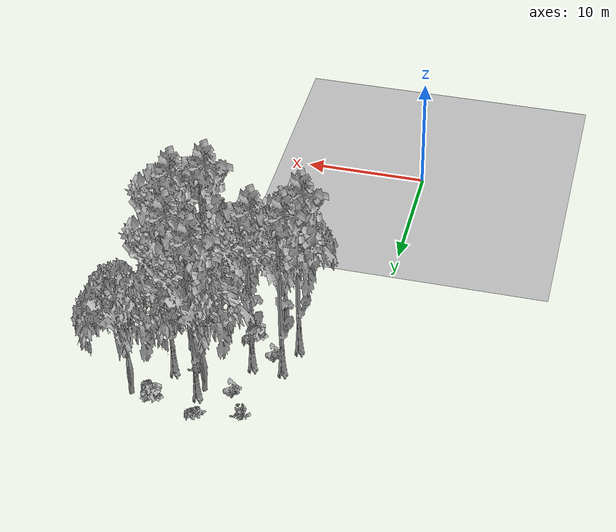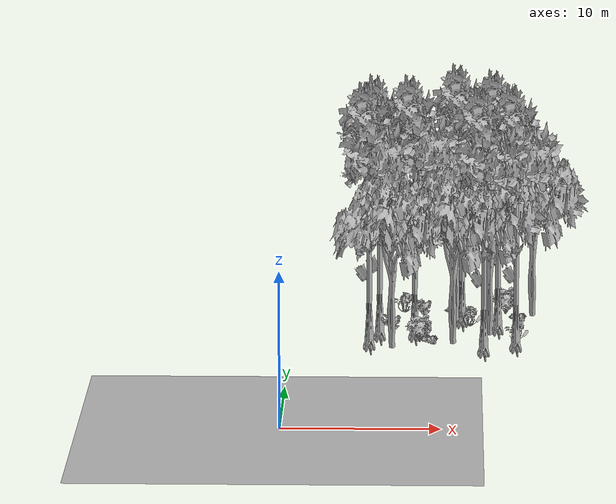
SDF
<sdf version="1.7">
 <world name="default">
  <model name="ground_plane">
   <static>1</static>
   <link name="link">
    <collision name="collision">
     <pose>-50 0 0 0 -0 0</pose>
     <geometry><plane><normal>0 0 1</normal><size>80 80</size></plane></geometry>
     <surface><contact><ode><min_depth>0.01</min_depth><max_vel>0</max_vel></ode></contact></surface>
    </collision>
    <visual name="grass">
     <cast_shadows>0</cast_shadows>
     <geometry>
      <mesh>
       <scale>0.46714285714285714 0.46714285714285714 0.1</scale>
       <uri>file://grass_plane/meshes/grass_plane.dae</uri>
      </mesh>
     </geometry>
    </visual>
   </link>
  </model>
  <model name="Tree 31">
   <static>1</static>
   <pose>16.09701156333501 29.292835042399773 0 1.57079 -0 0</pose>
   <link name="link">
    <collision name="collision">
     <geometry><mesh><scale>3.5 5 3.5</scale><uri>model://tree_2/meshes/tree_2.obj</uri></mesh></geometry>
    </collision>
    <visual name="visual">
     <geometry><mesh><scale>3.5 5 3.5</scale><uri>model://tree_2/meshes/tree_2.obj</uri></mesh></geometry>
    </visual>
   </link>
  </model>
  <model name="Tree 89">
   <static>1</static>
   <pose>12.811170432108987 20.4282303136765 0 1.57079 -0 0</pose>
   <link name="link">
    <collision name="collision">
     <geometry><mesh><scale>3.5 5 3.5</scale><uri>model://tree_9/meshes/tree_9.obj</uri></mesh></geometry>
    </collision>
    <visual name="visual">
     <geometry><mesh><scale>3.5 5 3.5</scale><uri>model://tree_9/meshes/tree_9.obj</uri></mesh></geometry>
    </visual>
   </link>
  </model>
  <model name="Tree 192">
   <static>1</static>
   <pose>14.956427715684825 21.725451570903275 0 1.57079 -0 0</pose>
   <link name="link">
    <collision name="collision">
     <geometry><mesh><scale>3.5 5 3.5</scale><uri>model://tree_9/meshes/tree_9.obj</uri></mesh></geometry>
    </collision>
    <visual name="visual">
     <geometry><mesh><scale>3.5 5 3.5</scale><uri>model://tree_9/meshes/tree_9.obj</uri></mesh></geometry>
    </visual>
   </link>
  </model>
  <model name="Tree 211">
   <static>1</static>
   <pose>11.382955004611148 28.433134392730025 0 1.57079 -0 0</pose>
   <link name="link">
    <collision name="collision">
     <geometry><mesh><scale>3.5 5 3.5</scale><uri>model://tree_9/meshes/tree_9.obj</uri></mesh></geometry>
    </collision>
    <visual name="visual">
     <geometry><mesh><scale>3.5 5 3.5</scale><uri>model://tree_9/meshes/tree_9.obj</uri></mesh></geometry>
    </visual>
   </link>
  </model>
  <model name="Tree 225">
   <static>1</static>
   <pose>8.210622335412822 24.585840497905068 0 1.57079 -0 0</pose>
   <link name="link">
    <collision name="collision">
     <geometry><mesh><scale>3.5 5 3.5</scale><uri>model://tree_9/meshes/tree_9.obj</uri></mesh></geometry>
    </collision>
    <visual name="visual">
     <geometry><mesh><scale>3.5 5 3.5</scale><uri>model://tree_9/meshes/tree_9.obj</uri></mesh></geometry>
    </visual>
   </link>
  </model>
  <model name="Tree 306">
   <static>1</static>
   <pose>13.800213129007048 26.397666558252126 0 1.57079 -0 0</pose>
   <link name="link">
    <collision name="collision">
     <geometry><mesh><scale>3.5 5 3.5</scale><uri>model://tree_9/meshes/tree_9.obj</uri></mesh></geometry>
    </collision>
    <visual name="visual">
     <geometry><mesh><scale>3.5 5 3.5</scale><uri>model://tree_9/meshes/tree_9.obj</uri></mesh></geometry>
    </visual>
   </link>
  </model>
  <model name="Tree 401">
   <static>1</static>
   <pose>13.13253680704652 23.965486844738336 0 1.57079 -0 0</pose>
   <link name="link">
    <collision name="collision">
     <geometry><mesh><scale>3.5 5 3.5</scale><uri>model://tree_2/meshes/tree_2.obj</uri></mesh></geometry>
    </collision>
    <visual name="visual">
     <geometry><mesh><scale>3.5 5 3.5</scale><uri>model://tree_2/meshes/tree_2.obj</uri></mesh></geometry>
    </visual>
   </link>
  </model>
  <model name="Tree 420">
   <static>1</static>
   <pose>5.205020564739172 22.053635298223213 0 1.57079 -0 0</pose>
   <link name="link">
    <collision name="collision">
     <geometry><mesh><scale>3.5 5 3.5</scale><uri>model://tree_9/meshes/tree_9.obj</uri></mesh></geometry>
    </collision>
    <visual name="visual">
     <geometry><mesh><scale>3.5 5 3.5</scale><uri>model://tree_9/meshes/tree_9.obj</uri></mesh></geometry>
    </visual>
   </link>
  </model>
  <model name="Tree 422">
   <static>1</static>
   <pose>10.894431190442148 27.805379338085615 0 1.57079 -0 0</pose>
   <link name="link">
    <collision name="collision">
     <geometry><mesh><scale>3.5 5 3.5</scale><uri>model://tree_2/meshes/tree_2.obj</uri></mesh></geometry>
    </collision>
    <visual name="visual">
     <geometry><mesh><scale>3.5 5 3.5</scale><uri>model://tree_2/meshes/tree_2.obj</uri></mesh></geometry>
    </visual>
   </link>
  </model>
  <model name="Tree 437">
   <static>1</static>
   <pose>6.64400740543217 20.320124091867214 0 1.57079 -0 0</pose>
   <link name="link">
    <collision name="collision">
     <geometry><mesh><scale>3.5 5 3.5</scale><uri>model://tree_2/meshes/tree_2.obj</uri></mesh></geometry>
    </collision>
    <visual name="visual">
     <geometry><mesh><scale>3.5 5 3.5</scale><uri>model://tree_2/meshes/tree_2.obj</uri></mesh></geometry>
    </visual>
   </link>
  </model>
  <model name="Tree 544">
   <static>1</static>
   <pose>5.866817948618738 24.57252617905789 0 1.57079 -0 0</pose>
   <link name="link">
    <collision name="collision">
     <geometry><mesh><scale>3.5 5 3.5</scale><uri>model://tree_9/meshes/tree_9.obj</uri></mesh></geometry>
    </collision>
    <visual name="visual">
     <geometry><mesh><scale>3.5 5 3.5</scale><uri>model://tree_9/meshes/tree_9.obj</uri></mesh></geometry>
    </visual>
   </link>
  </model>
  <model name="Tree 604">
   <static>1</static>
   <pose>10.682920250986001 21.540551169884466 0 1.57079 -0 0</pose>
   <link name="link">
    <collision name="collision">
     <geometry><mesh><scale>3.5 5 3.5</scale><uri>model://tree_2/meshes/tree_2.obj</uri></mesh></geometry>
    </collision>
    <visual name="visual">
     <geometry><mesh><scale>3.5 5 3.5</scale><uri>model://tree_2/meshes/tree_2.obj</uri></mesh></geometry>
    </visual>
   </link>
  </model>
  <model name="Bush 47">
   <static>1</static>
   <pose>9.216439573711668 22.0887438945675 0 1.57079 -0 0</pose>
   <link name="link">
    <collision name="collision">
     <geometry><mesh><scale>2 2 2</scale><uri>model://bush_2/meshes/bush_2.obj</uri></mesh></geometry>
     <surface><contact><collide_without_contact>false</collide_without_contact></contact></surface>
    </collision>
    <visual name="visual">
     <geometry><mesh><scale>2 2 2</scale><uri>model://bush_2/meshes/bush_2.obj</uri></mesh></geometry>
    </visual>
   </link>
  </model>
  <model name="Bush 118">
   <static>1</static>
   <pose>7.520211535157735 30.07102394331224 0 1.57079 -0 0</pose>
   <link name="link">
    <collision name="collision">
     <geometry><mesh><scale>2 2 2</scale><uri>model://bush_4/meshes/bush_4.obj</uri></mesh></geometry>
     <surface><contact><collide_without_contact>false</collide_without_contact></contact></surface>
    </collision>
    <visual name="visual">
     <geometry><mesh><scale>2 2 2</scale><uri>model://bush_4/meshes/bush_4.obj</uri></mesh></geometry>
    </visual>
   </link>
  </model>
  <model name="Bush 220">
   <static>1</static>
   <pose>8.56169828697471 21.869074713526913 0 1.57079 -0 0</pose>
   <link name="link">
    <collision name="collision">
     <geometry><mesh><scale>2 2 2</scale><uri>model://bush_1/meshes/bush_1.obj</uri></mesh></geometry>
     <surface><contact><collide_without_contact>false</collide_without_contact></contact></surface>
    </collision>
    <visual name="visual">
     <geometry><mesh><scale>2 2 2</scale><uri>model://bush_1/meshes/bush_1.obj</uri></mesh></geometry>
    </visual>
   </link>
  </model>
  <model name="Bush 260">
   <static>1</static>
   <pose>15.016034825978835 22.426381745863317 0 1.57079 -0 0</pose>
   <link name="link">
    <collision name="collision">
     <geometry><mesh><scale>2 2 2</scale><uri>model://bush_4/meshes/bush_4.obj</uri></mesh></geometry>
     <surface><contact><collide_without_contact>false</collide_without_contact></contact></surface>
    </collision>
    <visual name="visual">
     <geometry><mesh><scale>2 2 2</scale><uri>model://bush_4/meshes/bush_4.obj</uri></mesh></geometry>
    </visual>
   </link>
  </model>
  <model name="Bush 272">
   <static>1</static>
   <pose>11.922656826138223 26.27193422705885 0 1.57079 -0 0</pose>
   <link name="link">
    <collision name="collision">
     <geometry><mesh><scale>2 2 2</scale><uri>model://bush_4/meshes/bush_4.obj</uri></mesh></geometry>
     <surface><contact><collide_without_contact>false</collide_without_contact></contact></surface>
    </collision>
    <visual name="visual">
     <geometry><mesh><scale>2 2 2</scale><uri>model://bush_4/meshes/bush_4.obj</uri></mesh></geometry>
    </visual>
   </link>
  </model>
  <model name="Bush 300">
   <static>1</static>
   <pose>11.218436458509025 30.404741105508663 0 1.57079 -0 0</pose>
   <link name="link">
    <collision name="collision">
     <geometry><mesh><scale>2 2 2</scale><uri>model://bush_2/meshes/bush_2.obj</uri></mesh></geometry>
     <surface><contact><collide_without_contact>false</collide_without_contact></contact></surface>
    </collision>
    <visual name="visual">
     <geometry><mesh><scale>2 2 2</scale><uri>model://bush_2/meshes/bush_2.obj</uri></mesh></geometry>
    </visual>
   </link>
  </model>
  <model name="Bush 303">
   <static>1</static>
   <pose>14.362017528842706 29.703483727800432 0 1.57079 -0 0</pose>
   <link name="link">
    <collision name="collision">
     <geometry><mesh><scale>2 2 2</scale><uri>model://bush_1/meshes/bush_1.obj</uri></mesh></geometry>
     <surface><contact><collide_without_contact>false</collide_without_contact></contact></surface>
    </collision>
    <visual name="visual">
     <geometry><mesh><scale>2 2 2</scale><uri>model://bush_1/meshes/bush_1.obj</uri></mesh></geometry>
    </visual>
   </link>
  </model>
  <model name="Bush 357">
   <static>1</static>
   <pose>8.828238162405377 28.194831722417376 0 1.57079 -0 0</pose>
   <link name="link">
    <collision name="collision">
     <geometry><mesh><scale>2 2 2</scale><uri>model://bush_0/meshes/bush_0.obj</uri></mesh></geometry>
     <surface><contact><collide_without_contact>false</collide_without_contact></contact></surface>
    </collision>
    <visual name="visual">
     <geometry><mesh><scale>2 2 2</scale><uri>model://bush_0/meshes/bush_0.obj</uri></mesh></geometry>
    </visual>
   </link>
  </model>
  <model name="Bush 453">
   <static>1</static>
   <pose>15.20358358585348 28.397975091756166 0 1.57079 -0 0</pose>
   <link name="link">
    <collision name="collision">
     <geometry><mesh><scale>2 2 2</scale><uri>model://bush_2/meshes/bush_2.obj</uri></mesh></geometry>
     <surface><contact><collide_without_contact>false</collide_without_contact></contact></surface>
    </collision>
    <visual name="visual">
     <geometry><mesh><scale>2 2 2</scale><uri>model://bush_2/meshes/bush_2.obj</uri></mesh></geometry>
    </visual>
   </link>
  </model>
  <model name="Bush 501">
   <static>1</static>
   <pose>10.869075639689335 30.174465669132772 0 1.57079 -0 0</pose>
   <link name="link">
    <collision name="collision">
     <geometry><mesh><scale>2 2 2</scale><uri>model://bush_2/meshes/bush_2.obj</uri></mesh></geometry>
     <surface><contact><collide_without_contact>false</collide_without_contact></contact></surface>
    </collision>
    <visual name="visual">
     <geometry><mesh><scale>2 2 2</scale><uri>model://bush_2/meshes/bush_2.obj</uri></mesh></geometry>
    </visual>
   </link>
  </model>
  <model name="Bush 598">
   <static>1</static>
   <pose>6.768332739490226 23.949233074430296 0 1.57079 -0 0</pose>
   <link name="link">
    <collision name="collision">
     <geometry><mesh><scale>2 2 2</scale><uri>model://bush_0/meshes/bush_0.obj</uri></mesh></geometry>
     <surface><contact><collide_without_contact>false</collide_without_contact></contact></surface>
    </collision>
    <visual name="visual">
     <geometry><mesh><scale>2 2 2</scale><uri>model://bush_0/meshes/bush_0.obj</uri></mesh></geometry>
    </visual>
   </link>
  </model>
 </world>
</sdf>
